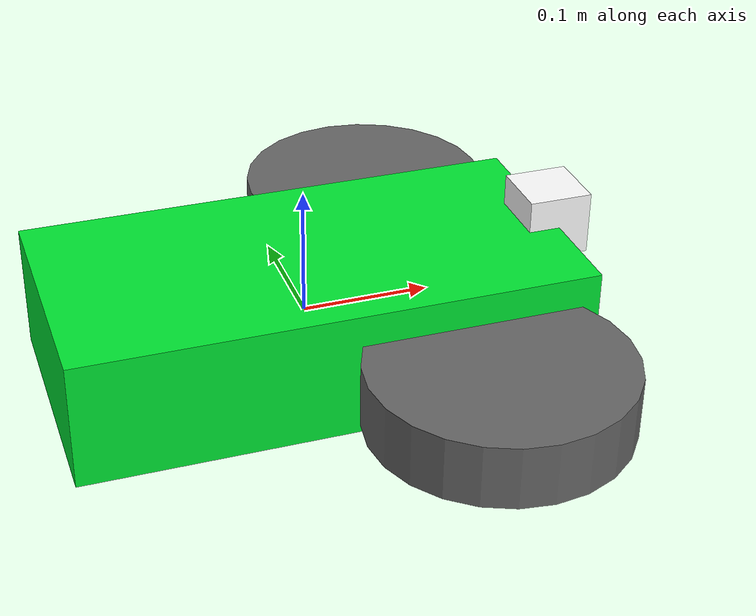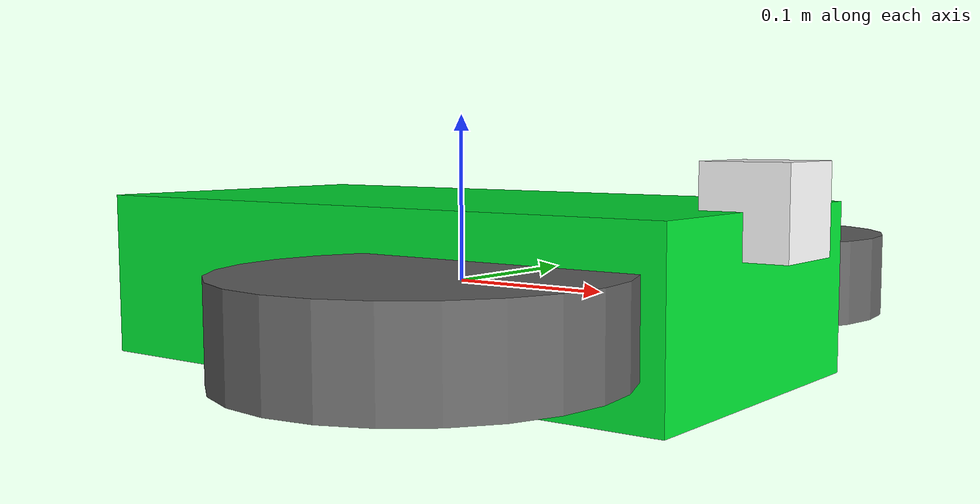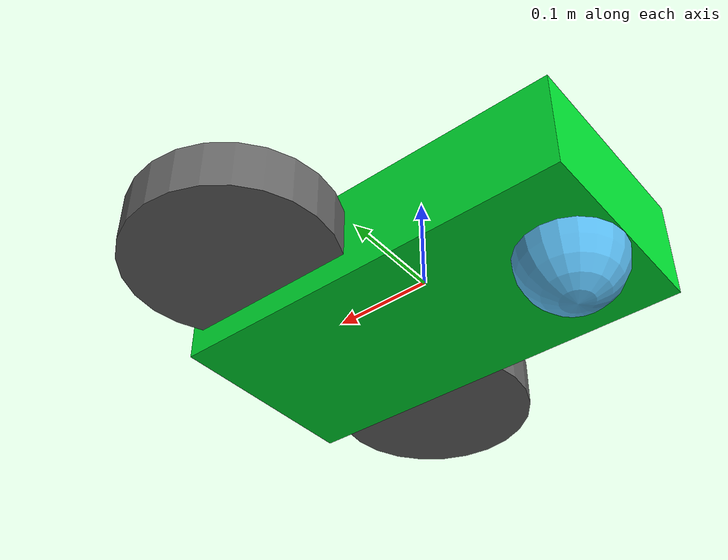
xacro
<?xml version="1.0"?>
<robot name="myrobot" xmlns:xacro="http://www.ros.org/wiki/xacro">

  <xacro:property name="cameraSize" value="0.05"/>
  <xacro:property name="cameraMass" value="0.1"/>

  <!-- Chassis -->
  <link name="chassis">
    <visual>
      <geometry>
        <box size="0.4 0.2 0.1"/>
      </geometry>
      <material name="green">
        <color rgba="0 0.9 0.2 1"/>
      </material>
    </visual>
    <collision>
      <geometry>
        <box size="0.4 0.2 0.1"/>
      </geometry>
    </collision>
    <inertial>
      <mass value="10.0"/>
      <origin xyz="0 0 0" rpy="0 0 0"/>
      <inertia ixx="0.1" ixy="0" ixz="0" iyy="0.2" iyz="0" izz="0.1"/>
    </inertial>
  </link>

  <!-- Caster -->
  <link name="caster">
    <visual>
      <geometry><sphere radius="0.05"/></geometry>
    </visual>
    <collision>
      <geometry><sphere radius="0.05"/></geometry>
    </collision>
    <inertial>
      <mass value="0.1"/>
      <inertia ixx="0.0001" ixy="0" ixz="0" iyy="0.0001" iyz="0" izz="0.0001"/>
    </inertial>
  </link>

  <joint name="joint_caster" type="fixed">
    <parent link="chassis"/>
    <child link="caster"/>
    <origin xyz="-0.15 0 -0.05" rpy="0 0 0"/>
  </joint>

  <!-- Left Wheel -->
  <link name="left_wheel">
    <visual>
      <geometry><cylinder radius="0.1" length="0.05"/></geometry>
      <material><color rgba="0.4 0.4 0.4 1"/></material>
    </visual>
    <collision>
      <geometry><cylinder radius="0.1" length="0.05"/></geometry>
    </collision>
    <inertial>
      <mass value="1.0"/>
      <inertia ixx="0.001" ixy="0" ixz="0" iyy="0.001" iyz="0" izz="0.001"/>
    </inertial>
  </link>

  <!-- Right Wheel -->
  <link name="right_wheel">
    <visual>
      <geometry><cylinder radius="0.1" length="0.05"/></geometry>
      <material><color rgba="0.4 0.4 0.4 1"/></material>
    </visual>
    <collision>
      <geometry><cylinder radius="0.1" length="0.05"/></geometry>
    </collision>
    <inertial>
      <mass value="1.0"/>
      <inertia ixx="0.001" ixy="0" ixz="0" iyy="0.001" iyz="0" izz="0.001"/>
    </inertial>
  </link>

  <!-- Wheel joints -->
  <joint name="left_wheel_hinge" type="continuous">
    <parent link="chassis"/>
    <child link="left_wheel"/>
    <origin xyz="0.1 0.15 0" rpy="0 0 0"/>
    <axis xyz="0 1 0"/>
    <joint_properties damping="1.0" friction="0.0"/>
  </joint>

  <joint name="right_wheel_hinge" type="continuous">
    <parent link="chassis"/>
    <child link="right_wheel"/>
    <origin xyz="0.1 -0.15 0" rpy="0 0 0"/>
    <axis xyz="0 1 0"/>
    <joint_properties damping="1.0" friction="0.0"/>
  </joint>

  <!-- Camera -->
  <link name="camera">
    <visual>
      <geometry><box size="${cameraSize} ${cameraSize} ${cameraSize}"/></geometry>
      <material><color rgba="1 1 1 1"/></material>
    </visual>
    <collision>
      <geometry><box size="${cameraSize} ${cameraSize} ${cameraSize}"/></geometry>
    </collision>
    <inertial>
      <mass value="${cameraMass}"/>
      <inertia ixx="1e-6" ixy="0" ixz="0" iyy="1e-6" iyz="0" izz="1e-6"/>
    </inertial>
  </link>

  <joint name="camera_joint" type="fixed">
    <parent link="chassis"/>
    <child link="camera"/>
    <origin xyz="0.2 0 0.05" rpy="0 0 0"/>
    <axis xyz="0 0 0"/>
  </joint>

</robot>
